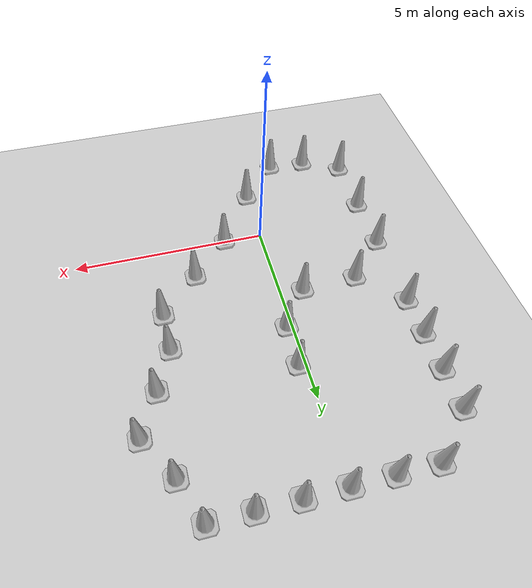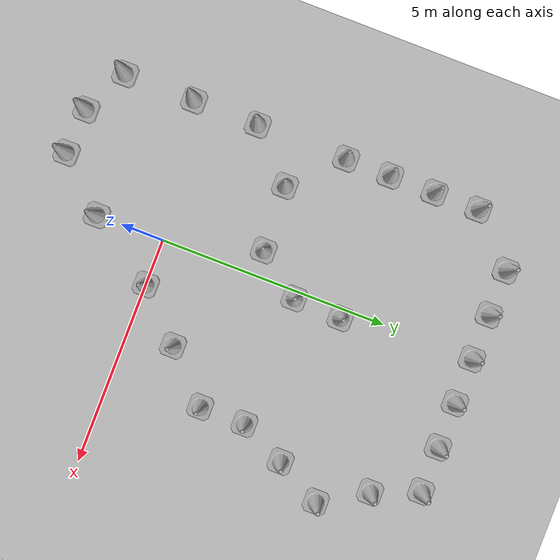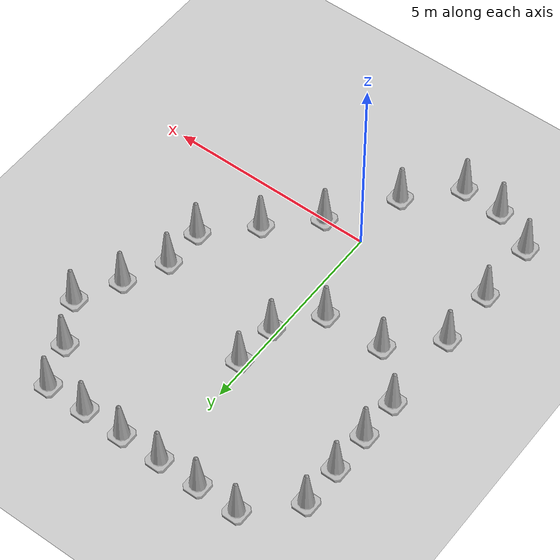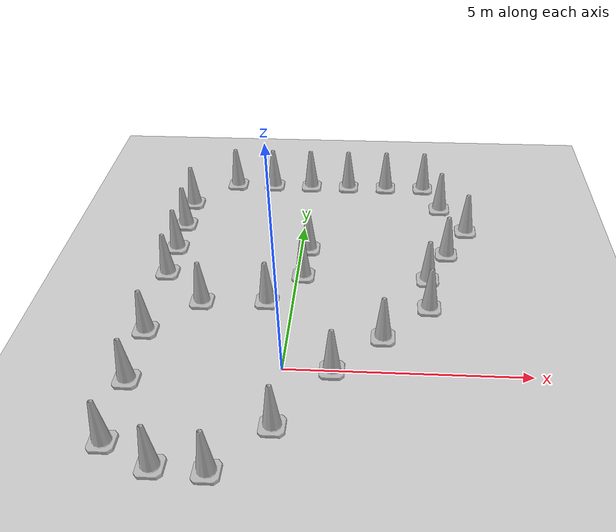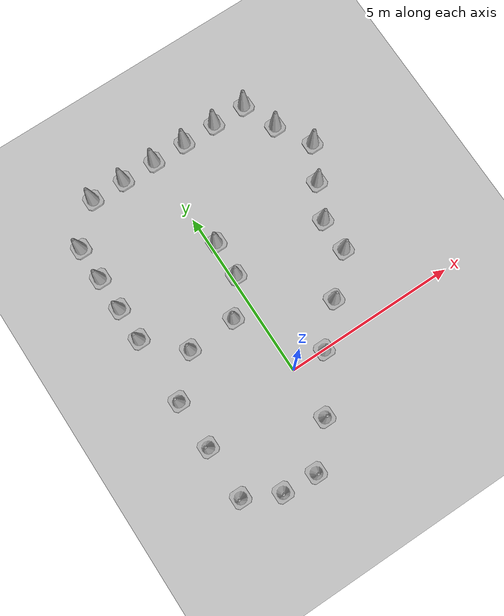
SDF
<sdf version="1.7">
 <world name="default">
  <light name="sun" type="directional">
   <pose>0 0 10 0 -0 0</pose>
   <diffuse>0.8 0.8 0.8 1</diffuse>
   <specular>0.2 0.2 0.2 1</specular>
   <attenuation>
    <range>1000</range>
    <constant>0.9</constant>
    <linear>0.01</linear>
    <quadratic>0.001</quadratic>
   </attenuation>
   <direction>-0.5 0.1 -0.9</direction>
   <spot><inner_angle>0</inner_angle><outer_angle>0</outer_angle><falloff>0</falloff></spot>
  </light>
  <model name="ground_plane">
   <static>1</static>
   <link name="link">
    <collision name="collision">
     <geometry><plane><normal>0 0 1</normal><size>100 100</size></plane></geometry>
     <surface><friction><ode><mu>100</mu><mu2>50</mu2></ode></friction></surface>
    </collision>
    <visual name="visual">
     <cast_shadows>0</cast_shadows>
     <geometry><plane><normal>0 0 1</normal><size>100 100</size></plane></geometry>
     <material>
      <script><uri>file://media/materials/scripts/gazebo.material</uri><name>Gazebo/Grey</name></script>
     </material>
    </visual>
   </link>
  </model>
  <gravity>0 0 -9.8</gravity>
  <magnetic_field>6e-06 2.3e-05 -4.2e-05</magnetic_field>
  <atmosphere type="adiabatic"/>
  <physics type="ode">
   <max_step_size>0.001</max_step_size>
   <real_time_factor>1</real_time_factor>
   <real_time_update_rate>1000</real_time_update_rate>
  </physics>
  <scene><ambient>0.4 0.4 0.4 1</ambient><background>0.7 0.7 0.7 1</background><shadows>1</shadows></scene>
  <audio><device>default</device></audio>
  <spherical_coordinates>
   <surface_model>EARTH_WGS84</surface_model>
   <latitude_deg>0</latitude_deg>
   <longitude_deg>0</longitude_deg>
   <elevation>0</elevation>
   <heading_deg>0</heading_deg>
  </spherical_coordinates>
  <model name="Construction Cone">
   <link name="link">
    <collision name="collision">
     <geometry>
      <mesh><scale>10 10 10</scale><uri>model://construction_cone/meshes/construction_cone.dae</uri></mesh>
     </geometry>
    </collision>
    <visual name="visual">
     <geometry>
      <mesh><scale>10 10 10</scale><uri>model://construction_cone/meshes/construction_cone.dae</uri></mesh>
     </geometry>
    </visual>
    <inertial>
     <inertia><ixx>1</ixx><ixy>0</ixy><ixz>0</ixz><iyy>1</iyy><iyz>0</iyz><izz>1</izz></inertia>
     <mass>1</mass>
    </inertial>
   </link>
   <pose>0.188896 4.09271 0 -0 -0 -0</pose>
  </model>
  <model name="Construction Cone_clone">
   <link name="link">
    <collision name="collision">
     <geometry>
      <mesh><scale>10 10 10</scale><uri>model://construction_cone/meshes/construction_cone.dae</uri></mesh>
     </geometry>
    </collision>
    <visual name="visual">
     <geometry>
      <mesh><scale>10 10 10</scale><uri>model://construction_cone/meshes/construction_cone.dae</uri></mesh>
     </geometry>
    </visual>
    <inertial>
     <inertia><ixx>1</ixx><ixy>0</ixy><ixz>0</ixz><iyy>1</iyy><iyz>0</iyz><izz>1</izz></inertia>
     <mass>1</mass>
    </inertial>
   </link>
   <pose>0.146919 3.0328 -0 -0 -0 -0</pose>
  </model>
  <model name="Construction Cone_clone_0">
   <link name="link">
    <collision name="collision">
     <geometry>
      <mesh><scale>10 10 10</scale><uri>model://construction_cone/meshes/construction_cone.dae</uri></mesh>
     </geometry>
    </collision>
    <visual name="visual">
     <geometry>
      <mesh><scale>10 10 10</scale><uri>model://construction_cone/meshes/construction_cone.dae</uri></mesh>
     </geometry>
    </visual>
    <inertial>
     <inertia><ixx>1</ixx><ixy>0</ixy><ixz>0</ixz><iyy>1</iyy><iyz>0</iyz><izz>1</izz></inertia>
     <mass>1</mass>
    </inertial>
   </link>
   <pose>-0.566682 2.06734 -1e-05 -0 -0 -0</pose>
  </model>
  <model name="Construction Cone_clone_1">
   <link name="link">
    <collision name="collision">
     <geometry>
      <mesh><scale>10 10 10</scale><uri>model://construction_cone/meshes/construction_cone.dae</uri></mesh>
     </geometry>
    </collision>
    <visual name="visual">
     <geometry>
      <mesh><scale>10 10 10</scale><uri>model://construction_cone/meshes/construction_cone.dae</uri></mesh>
     </geometry>
    </visual>
    <inertial>
     <inertia><ixx>1</ixx><ixy>0</ixy><ixz>0</ixz><iyy>1</iyy><iyz>0</iyz><izz>1</izz></inertia>
     <mass>1</mass>
    </inertial>
   </link>
   <pose>-2 2 -0 0 -1e-06 0</pose>
  </model>
  <model name="Construction Cone_clone_2">
   <link name="link">
    <collision name="collision">
     <geometry>
      <mesh><scale>10 10 10</scale><uri>model://construction_cone/meshes/construction_cone.dae</uri></mesh>
     </geometry>
    </collision>
    <visual name="visual">
     <geometry>
      <mesh><scale>10 10 10</scale><uri>model://construction_cone/meshes/construction_cone.dae</uri></mesh>
     </geometry>
    </visual>
    <inertial>
     <inertia><ixx>1</ixx><ixy>0</ixy><ixz>0</ixz><iyy>1</iyy><iyz>0</iyz><izz>1</izz></inertia>
     <mass>1</mass>
    </inertial>
   </link>
   <pose>-3 3 -0 0 -1e-06 0</pose>
  </model>
  <model name="Construction Cone_clone_3">
   <link name="link">
    <collision name="collision">
     <geometry>
      <mesh><scale>10 10 10</scale><uri>model://construction_cone/meshes/construction_cone.dae</uri></mesh>
     </geometry>
    </collision>
    <visual name="visual">
     <geometry>
      <mesh><scale>10 10 10</scale><uri>model://construction_cone/meshes/construction_cone.dae</uri></mesh>
     </geometry>
    </visual>
    <inertial>
     <inertia><ixx>1</ixx><ixy>0</ixy><ixz>0</ixz><iyy>1</iyy><iyz>0</iyz><izz>1</izz></inertia>
     <mass>1</mass>
    </inertial>
   </link>
   <pose>-3 5 -0 0 -1e-06 0</pose>
  </model>
  <model name="Construction Cone_clone_4">
   <link name="link">
    <collision name="collision">
     <geometry>
      <mesh><scale>10 10 10</scale><uri>model://construction_cone/meshes/construction_cone.dae</uri></mesh>
     </geometry>
    </collision>
    <visual name="visual">
     <geometry>
      <mesh><scale>10 10 10</scale><uri>model://construction_cone/meshes/construction_cone.dae</uri></mesh>
     </geometry>
    </visual>
    <inertial>
     <inertia><ixx>1</ixx><ixy>0</ixy><ixz>0</ixz><iyy>1</iyy><iyz>0</iyz><izz>1</izz></inertia>
     <mass>1</mass>
    </inertial>
   </link>
   <pose>-3 4 -9e-06 0 -0 0</pose>
  </model>
  <model name="Construction Cone_clone_5">
   <link name="link">
    <collision name="collision">
     <geometry>
      <mesh><scale>10 10 10</scale><uri>model://construction_cone/meshes/construction_cone.dae</uri></mesh>
     </geometry>
    </collision>
    <visual name="visual">
     <geometry>
      <mesh><scale>10 10 10</scale><uri>model://construction_cone/meshes/construction_cone.dae</uri></mesh>
     </geometry>
    </visual>
    <inertial>
     <inertia><ixx>1</ixx><ixy>0</ixy><ixz>0</ixz><iyy>1</iyy><iyz>0</iyz><izz>1</izz></inertia>
     <mass>1</mass>
    </inertial>
   </link>
   <pose>-3 6 -0 0 -1e-06 0</pose>
  </model>
  <model name="Construction Cone_clone_6">
   <link name="link">
    <collision name="collision">
     <geometry>
      <mesh><scale>10 10 10</scale><uri>model://construction_cone/meshes/construction_cone.dae</uri></mesh>
     </geometry>
    </collision>
    <visual name="visual">
     <geometry>
      <mesh><scale>10 10 10</scale><uri>model://construction_cone/meshes/construction_cone.dae</uri></mesh>
     </geometry>
    </visual>
    <inertial>
     <inertia><ixx>1</ixx><ixy>0</ixy><ixz>0</ixz><iyy>1</iyy><iyz>0</iyz><izz>1</izz></inertia>
     <mass>1</mass>
    </inertial>
   </link>
   <pose>-2 7 -0 0 -1e-06 0</pose>
  </model>
  <model name="Construction Cone_clone_7">
   <link name="link">
    <collision name="collision">
     <geometry>
      <mesh><scale>10 10 10</scale><uri>model://construction_cone/meshes/construction_cone.dae</uri></mesh>
     </geometry>
    </collision>
    <visual name="visual">
     <geometry>
      <mesh><scale>10 10 10</scale><uri>model://construction_cone/meshes/construction_cone.dae</uri></mesh>
     </geometry>
    </visual>
    <inertial>
     <inertia><ixx>1</ixx><ixy>0</ixy><ixz>0</ixz><iyy>1</iyy><iyz>0</iyz><izz>1</izz></inertia>
     <mass>1</mass>
    </inertial>
   </link>
   <pose>-1 7 -0 0 -1e-06 0</pose>
  </model>
  <model name="Construction Cone_clone_8">
   <link name="link">
    <collision name="collision">
     <geometry>
      <mesh><scale>10 10 10</scale><uri>model://construction_cone/meshes/construction_cone.dae</uri></mesh>
     </geometry>
    </collision>
    <visual name="visual">
     <geometry>
      <mesh><scale>10 10 10</scale><uri>model://construction_cone/meshes/construction_cone.dae</uri></mesh>
     </geometry>
    </visual>
    <inertial>
     <inertia><ixx>1</ixx><ixy>0</ixy><ixz>0</ixz><iyy>1</iyy><iyz>0</iyz><izz>1</izz></inertia>
     <mass>1</mass>
    </inertial>
   </link>
   <pose>-0 7 -0 0 -1e-06 0</pose>
  </model>
  <model name="Construction Cone_clone_9">
   <link name="link">
    <collision name="collision">
     <geometry>
      <mesh><scale>10 10 10</scale><uri>model://construction_cone/meshes/construction_cone.dae</uri></mesh>
     </geometry>
    </collision>
    <visual name="visual">
     <geometry>
      <mesh><scale>10 10 10</scale><uri>model://construction_cone/meshes/construction_cone.dae</uri></mesh>
     </geometry>
    </visual>
    <inertial>
     <inertia><ixx>1</ixx><ixy>0</ixy><ixz>0</ixz><iyy>1</iyy><iyz>0</iyz><izz>1</izz></inertia>
     <mass>1</mass>
    </inertial>
   </link>
   <pose>1 7 -0 0 -0 0</pose>
  </model>
  <model name="Construction Cone_clone_10">
   <link name="link">
    <collision name="collision">
     <geometry>
      <mesh><scale>10 10 10</scale><uri>model://construction_cone/meshes/construction_cone.dae</uri></mesh>
     </geometry>
    </collision>
    <visual name="visual">
     <geometry>
      <mesh><scale>10 10 10</scale><uri>model://construction_cone/meshes/construction_cone.dae</uri></mesh>
     </geometry>
    </visual>
    <inertial>
     <inertia><ixx>1</ixx><ixy>0</ixy><ixz>0</ixz><iyy>1</iyy><iyz>0</iyz><izz>1</izz></inertia>
     <mass>1</mass>
    </inertial>
   </link>
   <pose>2 7 -1e-06 2e-06 2e-06 0</pose>
  </model>
  <model name="Construction Cone_clone_11">
   <link name="link">
    <collision name="collision">
     <geometry>
      <mesh><scale>10 10 10</scale><uri>model://construction_cone/meshes/construction_cone.dae</uri></mesh>
     </geometry>
    </collision>
    <visual name="visual">
     <geometry>
      <mesh><scale>10 10 10</scale><uri>model://construction_cone/meshes/construction_cone.dae</uri></mesh>
     </geometry>
    </visual>
    <inertial>
     <inertia><ixx>1</ixx><ixy>0</ixy><ixz>0</ixz><iyy>1</iyy><iyz>0</iyz><izz>1</izz></inertia>
     <mass>1</mass>
    </inertial>
   </link>
   <pose>3 7 -0 0 -1e-06 0</pose>
  </model>
  <model name="Construction Cone_clone_12">
   <link name="link">
    <collision name="collision">
     <geometry>
      <mesh><scale>10 10 10</scale><uri>model://construction_cone/meshes/construction_cone.dae</uri></mesh>
     </geometry>
    </collision>
    <visual name="visual">
     <geometry>
      <mesh><scale>10 10 10</scale><uri>model://construction_cone/meshes/construction_cone.dae</uri></mesh>
     </geometry>
    </visual>
    <inertial>
     <inertia><ixx>1</ixx><ixy>0</ixy><ixz>0</ixz><iyy>1</iyy><iyz>0</iyz><izz>1</izz></inertia>
     <mass>1</mass>
    </inertial>
   </link>
   <pose>3.4001 6 -0 0 -1e-06 0</pose>
  </model>
  <model name="Construction Cone_clone_13">
   <link name="link">
    <collision name="collision">
     <geometry>
      <mesh><scale>10 10 10</scale><uri>model://construction_cone/meshes/construction_cone.dae</uri></mesh>
     </geometry>
    </collision>
    <visual name="visual">
     <geometry>
      <mesh><scale>10 10 10</scale><uri>model://construction_cone/meshes/construction_cone.dae</uri></mesh>
     </geometry>
    </visual>
    <inertial>
     <inertia><ixx>1</ixx><ixy>0</ixy><ixz>0</ixz><iyy>1</iyy><iyz>0</iyz><izz>1</izz></inertia>
     <mass>1</mass>
    </inertial>
   </link>
   <pose>4 5 -1e-05 -1e-06 0 0</pose>
  </model>
  <model name="Construction Cone_clone_14">
   <link name="link">
    <collision name="collision">
     <geometry>
      <mesh><scale>10 10 10</scale><uri>model://construction_cone/meshes/construction_cone.dae</uri></mesh>
     </geometry>
    </collision>
    <visual name="visual">
     <geometry>
      <mesh><scale>10 10 10</scale><uri>model://construction_cone/meshes/construction_cone.dae</uri></mesh>
     </geometry>
    </visual>
    <inertial>
     <inertia><ixx>1</ixx><ixy>0</ixy><ixz>0</ixz><iyy>1</iyy><iyz>0</iyz><izz>1</izz></inertia>
     <mass>1</mass>
    </inertial>
   </link>
   <pose>3.47356 4 -0 0 -1e-06 0</pose>
  </model>
  <model name="Construction Cone_clone_15">
   <link name="link">
    <collision name="collision">
     <geometry>
      <mesh><scale>10 10 10</scale><uri>model://construction_cone/meshes/construction_cone.dae</uri></mesh>
     </geometry>
    </collision>
    <visual name="visual">
     <geometry>
      <mesh><scale>10 10 10</scale><uri>model://construction_cone/meshes/construction_cone.dae</uri></mesh>
     </geometry>
    </visual>
    <inertial>
     <inertia><ixx>1</ixx><ixy>0</ixy><ixz>0</ixz><iyy>1</iyy><iyz>0</iyz><izz>1</izz></inertia>
     <mass>1</mass>
    </inertial>
   </link>
   <pose>3 3 -0 0 -1e-06 0</pose>
  </model>
  <model name="Construction Cone_clone_16">
   <link name="link">
    <collision name="collision">
     <geometry>
      <mesh><scale>10 10 10</scale><uri>model://construction_cone/meshes/construction_cone.dae</uri></mesh>
     </geometry>
    </collision>
    <visual name="visual">
     <geometry>
      <mesh><scale>10 10 10</scale><uri>model://construction_cone/meshes/construction_cone.dae</uri></mesh>
     </geometry>
    </visual>
    <inertial>
     <inertia><ixx>1</ixx><ixy>0</ixy><ixz>0</ixz><iyy>1</iyy><iyz>0</iyz><izz>1</izz></inertia>
     <mass>1</mass>
    </inertial>
   </link>
   <pose>3 2 -0 0 -1e-06 0</pose>
  </model>
  <model name="Construction Cone_clone_17">
   <link name="link">
    <collision name="collision">
     <geometry>
      <mesh><scale>10 10 10</scale><uri>model://construction_cone/meshes/construction_cone.dae</uri></mesh>
     </geometry>
    </collision>
    <visual name="visual">
     <geometry>
      <mesh><scale>10 10 10</scale><uri>model://construction_cone/meshes/construction_cone.dae</uri></mesh>
     </geometry>
    </visual>
    <inertial>
     <inertia><ixx>1</ixx><ixy>0</ixy><ixz>0</ixz><iyy>1</iyy><iyz>0</iyz><izz>1</izz></inertia>
     <mass>1</mass>
    </inertial>
   </link>
   <pose>2 1 -0 0 -1e-06 0</pose>
  </model>
  <model name="Construction Cone_clone_18">
   <link name="link">
    <collision name="collision">
     <geometry>
      <mesh><scale>10 10 10</scale><uri>model://construction_cone/meshes/construction_cone.dae</uri></mesh>
     </geometry>
    </collision>
    <visual name="visual">
     <geometry>
      <mesh><scale>10 10 10</scale><uri>model://construction_cone/meshes/construction_cone.dae</uri></mesh>
     </geometry>
    </visual>
    <inertial>
     <inertia><ixx>1</ixx><ixy>0</ixy><ixz>0</ixz><iyy>1</iyy><iyz>0</iyz><izz>1</izz></inertia>
     <mass>1</mass>
    </inertial>
   </link>
   <pose>1 0 -0 0 -1e-06 0</pose>
  </model>
  <model name="Construction Cone_clone_19">
   <link name="link">
    <collision name="collision">
     <geometry>
      <mesh><scale>10 10 10</scale><uri>model://construction_cone/meshes/construction_cone.dae</uri></mesh>
     </geometry>
    </collision>
    <visual name="visual">
     <geometry>
      <mesh><scale>10 10 10</scale><uri>model://construction_cone/meshes/construction_cone.dae</uri></mesh>
     </geometry>
    </visual>
    <inertial>
     <inertia><ixx>1</ixx><ixy>0</ixy><ixz>0</ixz><iyy>1</iyy><iyz>0</iyz><izz>1</izz></inertia>
     <mass>1</mass>
    </inertial>
   </link>
   <pose>-0 -1.49146 -0 0 -1e-06 0</pose>
  </model>
  <model name="Construction Cone_clone_20">
   <link name="link">
    <collision name="collision">
     <geometry>
      <mesh><scale>10 10 10</scale><uri>model://construction_cone/meshes/construction_cone.dae</uri></mesh>
     </geometry>
    </collision>
    <visual name="visual">
     <geometry>
      <mesh><scale>10 10 10</scale><uri>model://construction_cone/meshes/construction_cone.dae</uri></mesh>
     </geometry>
    </visual>
    <inertial>
     <inertia><ixx>1</ixx><ixy>0</ixy><ixz>0</ixz><iyy>1</iyy><iyz>0</iyz><izz>1</izz></inertia>
     <mass>1</mass>
    </inertial>
   </link>
   <pose>-1 -2.56186 -1e-05 -1e-06 0 0</pose>
  </model>
  <model name="Construction Cone_clone_21">
   <link name="link">
    <collision name="collision">
     <geometry>
      <mesh><scale>10 10 10</scale><uri>model://construction_cone/meshes/construction_cone.dae</uri></mesh>
     </geometry>
    </collision>
    <visual name="visual">
     <geometry>
      <mesh><scale>10 10 10</scale><uri>model://construction_cone/meshes/construction_cone.dae</uri></mesh>
     </geometry>
    </visual>
    <inertial>
     <inertia><ixx>1</ixx><ixy>0</ixy><ixz>0</ixz><iyy>1</iyy><iyz>0</iyz><izz>1</izz></inertia>
     <mass>1</mass>
    </inertial>
   </link>
   <pose>-2 -2.4989 -0 1e-06 -0 0</pose>
  </model>
  <model name="Construction Cone_clone_22">
   <link name="link">
    <collision name="collision">
     <geometry>
      <mesh><scale>10 10 10</scale><uri>model://construction_cone/meshes/construction_cone.dae</uri></mesh>
     </geometry>
    </collision>
    <visual name="visual">
     <geometry>
      <mesh><scale>10 10 10</scale><uri>model://construction_cone/meshes/construction_cone.dae</uri></mesh>
     </geometry>
    </visual>
    <inertial>
     <inertia><ixx>1</ixx><ixy>0</ixy><ixz>0</ixz><iyy>1</iyy><iyz>0</iyz><izz>1</izz></inertia>
     <mass>1</mass>
    </inertial>
   </link>
   <pose>-3 -2 -0 0 -1e-06 0</pose>
  </model>
  <model name="Construction Cone_clone_23">
   <link name="link">
    <collision name="collision">
     <geometry>
      <mesh><scale>10 10 10</scale><uri>model://construction_cone/meshes/construction_cone.dae</uri></mesh>
     </geometry>
    </collision>
    <visual name="visual">
     <geometry>
      <mesh><scale>10 10 10</scale><uri>model://construction_cone/meshes/construction_cone.dae</uri></mesh>
     </geometry>
    </visual>
    <inertial>
     <inertia><ixx>1</ixx><ixy>0</ixy><ixz>0</ixz><iyy>1</iyy><iyz>0</iyz><izz>1</izz></inertia>
     <mass>1</mass>
    </inertial>
   </link>
   <pose>-3 -0.442048 0 -0 -0 -0</pose>
  </model>
  <model name="Construction Cone_clone_24">
   <link name="link">
    <collision name="collision">
     <geometry>
      <mesh><scale>10 10 10</scale><uri>model://construction_cone/meshes/construction_cone.dae</uri></mesh>
     </geometry>
    </collision>
    <visual name="visual">
     <geometry>
      <mesh><scale>10 10 10</scale><uri>model://construction_cone/meshes/construction_cone.dae</uri></mesh>
     </geometry>
    </visual>
    <inertial>
     <inertia><ixx>1</ixx><ixy>0</ixy><ixz>0</ixz><iyy>1</iyy><iyz>0</iyz><izz>1</izz></inertia>
     <mass>1</mass>
    </inertial>
   </link>
   <pose>-3 1 -0 0 -1e-06 0</pose>
  </model>
 </world>
</sdf>
